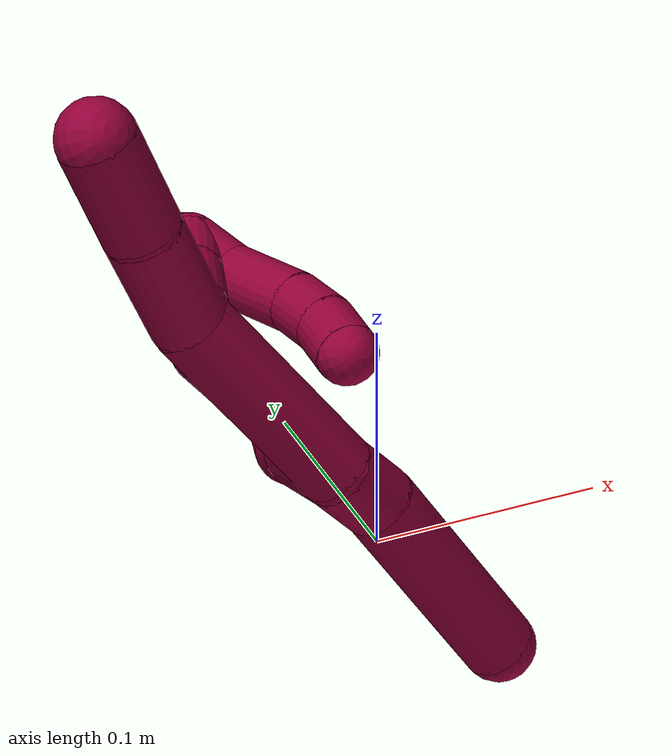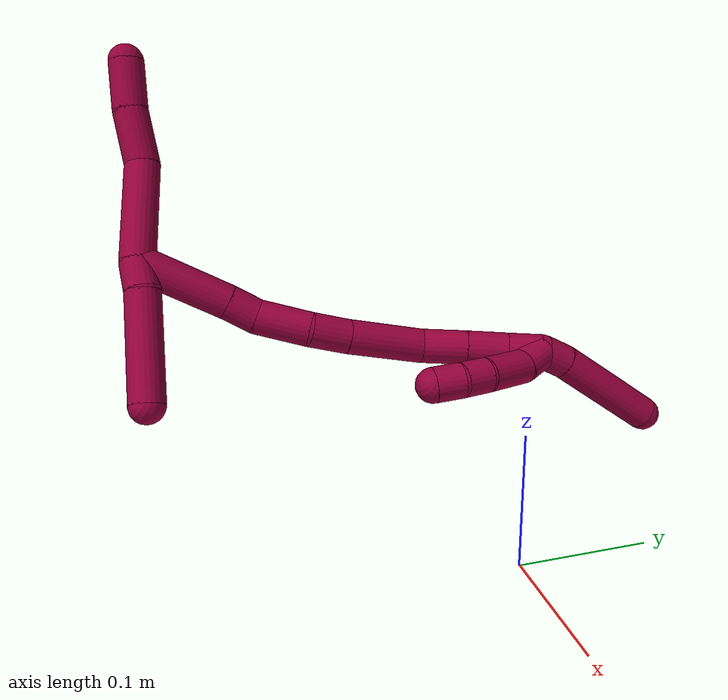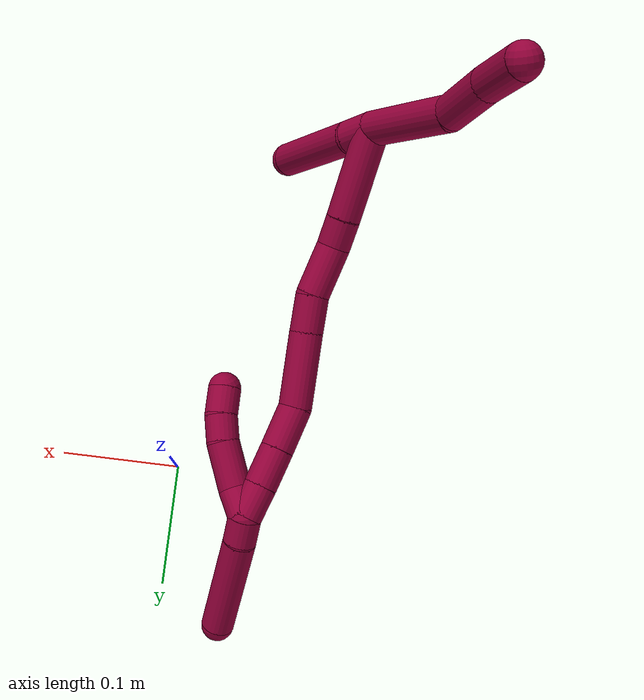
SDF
<sdf version="1.7">
 <world name="default">
  <model name="8">
   <static>0</static>
   <link name="8">
    <collision name="collision-cylinder-e_1_2_8">
     <pose>-0.030893 0.020094 0.006788 -1.24501 -0.969157 0.722496</pose>
     <geometry><cylinder><radius>0.0125</radius><length>0.074945</length></cylinder></geometry>
     <surface>
      <friction><ode><mu>1.16</mu><mu2>1.16</mu2><slip1>0</slip1><slip2>0</slip2></ode></friction>
      <contact><ode><kp>1e+06</kp><kd>1</kd><max_vel>0</max_vel><min_depth>0.001</min_depth></ode></contact>
     </surface>
    </collision>
    <visual name="visual-cylinder-e_1_2_8">
     <pose>-0.030893 0.020094 0.006788 -1.24501 -0.969157 0.722496</pose>
     <geometry><cylinder><radius>0.0125</radius><length>0.074945</length></cylinder></geometry>
     <material><ambient>0.584314 0 0.227451 1</ambient></material>
    </visual>
    <collision name="collision-cylinder-e_2_8_9">
     <pose>-0.075397 0.05085 0.02342 -0.825297 -0.753401 0.342965</pose>
     <geometry><cylinder><radius>0.0125</radius><length>0.039793</length></cylinder></geometry>
     <surface>
      <friction><ode><mu>1.16</mu><mu2>1.16</mu2><slip1>0</slip1><slip2>0</slip2></ode></friction>
      <contact><ode><kp>1e+06</kp><kd>1</kd><max_vel>0</max_vel><min_depth>0.001</min_depth></ode></contact>
     </surface>
    </collision>
    <visual name="visual-cylinder-e_2_8_9">
     <pose>-0.075397 0.05085 0.02342 -0.825297 -0.753401 0.342965</pose>
     <geometry><cylinder><radius>0.0125</radius><length>0.039793</length></cylinder></geometry>
     <material><ambient>0.584314 0 0.227451 1</ambient></material>
    </visual>
    <collision name="collision-cylinder-e_3_9_6">
     <pose>-0.100681 0.072612 0.040435 -0.997205 -0.723526 0.4064</pose>
     <geometry><cylinder><radius>0.0125</radius><length>0.035262</length></cylinder></geometry>
     <surface>
      <friction><ode><mu>1.16</mu><mu2>1.16</mu2><slip1>0</slip1><slip2>0</slip2></ode></friction>
      <contact><ode><kp>1e+06</kp><kd>1</kd><max_vel>0</max_vel><min_depth>0.001</min_depth></ode></contact>
     </surface>
    </collision>
    <visual name="visual-cylinder-e_3_9_6">
     <pose>-0.100681 0.072612 0.040435 -0.997205 -0.723526 0.4064</pose>
     <geometry><cylinder><radius>0.0125</radius><length>0.035262</length></cylinder></geometry>
     <material><ambient>0.584314 0 0.227451 1</ambient></material>
    </visual>
    <collision name="collision-cylinder-e_1_2_10">
     <pose>0.009881 -0.004085 -0.003305 2.25104 1.08207 1.79908</pose>
     <geometry><cylinder><radius>0.0125</radius><length>0.022382</length></cylinder></geometry>
     <surface>
      <friction><ode><mu>1.16</mu><mu2>1.16</mu2><slip1>0</slip1><slip2>0</slip2></ode></friction>
      <contact><ode><kp>1e+06</kp><kd>1</kd><max_vel>0</max_vel><min_depth>0.001</min_depth></ode></contact>
     </surface>
    </collision>
    <visual name="visual-cylinder-e_1_2_10">
     <pose>0.009881 -0.004085 -0.003305 2.25104 1.08207 1.79908</pose>
     <geometry><cylinder><radius>0.0125</radius><length>0.022382</length></cylinder></geometry>
     <material><ambient>0.584314 0 0.227451 1</ambient></material>
    </visual>
    <collision name="collision-cylinder-e_2_10_5">
     <pose>0.050596 -0.029103 -0.017436 2.04809 0.918195 1.36424</pose>
     <geometry><cylinder><radius>0.0125</radius><length>0.077618</length></cylinder></geometry>
     <surface>
      <friction><ode><mu>1.16</mu><mu2>1.16</mu2><slip1>0</slip1><slip2>0</slip2></ode></friction>
      <contact><ode><kp>1e+06</kp><kd>1</kd><max_vel>0</max_vel><min_depth>0.001</min_depth></ode></contact>
     </surface>
    </collision>
    <visual name="visual-cylinder-e_2_10_5">
     <pose>0.050596 -0.029103 -0.017436 2.04809 0.918195 1.36424</pose>
     <geometry><cylinder><radius>0.0125</radius><length>0.077618</length></cylinder></geometry>
     <material><ambient>0.584314 0 0.227451 1</ambient></material>
    </visual>
    <collision name="collision-cylinder-e_1_2_11">
     <pose>0.012061 0.007087 -0.030033 -2.90986 0.372609 -2.03527</pose>
     <geometry><cylinder><radius>0.0125</radius><length>0.066261</length></cylinder></geometry>
     <surface>
      <friction><ode><mu>1.16</mu><mu2>1.16</mu2><slip1>0</slip1><slip2>0</slip2></ode></friction>
      <contact><ode><kp>1e+06</kp><kd>1</kd><max_vel>0</max_vel><min_depth>0.001</min_depth></ode></contact>
     </surface>
    </collision>
    <visual name="visual-cylinder-e_1_2_11">
     <pose>0.012061 0.007087 -0.030033 -2.90986 0.372609 -2.03527</pose>
     <geometry><cylinder><radius>0.0125</radius><length>0.066261</length></cylinder></geometry>
     <material><ambient>0.584314 0 0.227451 1</ambient></material>
    </visual>
    <collision name="collision-cylinder-e_2_11_12">
     <pose>0.028471 0.016 -0.069984 -2.95945 0.407066 -2.30844</pose>
     <geometry><cylinder><radius>0.0125</radius><length>0.021967</length></cylinder></geometry>
     <surface>
      <friction><ode><mu>1.16</mu><mu2>1.16</mu2><slip1>0</slip1><slip2>0</slip2></ode></friction>
      <contact><ode><kp>1e+06</kp><kd>1</kd><max_vel>0</max_vel><min_depth>0.001</min_depth></ode></contact>
     </surface>
    </collision>
    <visual name="visual-cylinder-e_2_11_12">
     <pose>0.028471 0.016 -0.069984 -2.95945 0.407066 -2.30844</pose>
     <geometry><cylinder><radius>0.0125</radius><length>0.021967</length></cylinder></geometry>
     <material><ambient>0.584314 0 0.227451 1</ambient></material>
    </visual>
    <collision name="collision-cylinder-e_3_12_13">
     <pose>0.04043 0.026061 -0.095576 -2.65788 0.405976 -1.39068</pose>
     <geometry><cylinder><radius>0.0125</radius><length>0.038542</length></cylinder></geometry>
     <surface>
      <friction><ode><mu>1.16</mu><mu2>1.16</mu2><slip1>0</slip1><slip2>0</slip2></ode></friction>
      <contact><ode><kp>1e+06</kp><kd>1</kd><max_vel>0</max_vel><min_depth>0.001</min_depth></ode></contact>
     </surface>
    </collision>
    <visual name="visual-cylinder-e_3_12_13">
     <pose>0.04043 0.026061 -0.095576 -2.65788 0.405976 -1.39068</pose>
     <geometry><cylinder><radius>0.0125</radius><length>0.038542</length></cylinder></geometry>
     <material><ambient>0.584314 0 0.227451 1</ambient></material>
    </visual>
    <collision name="collision-cylinder-e_4_13_14">
     <pose>0.050535 0.039454 -0.124039 -2.75816 0.17895 -0.865919</pose>
     <geometry><cylinder><radius>0.0125</radius><length>0.028029</length></cylinder></geometry>
     <surface>
      <friction><ode><mu>1.16</mu><mu2>1.16</mu2><slip1>0</slip1><slip2>0</slip2></ode></friction>
      <contact><ode><kp>1e+06</kp><kd>1</kd><max_vel>0</max_vel><min_depth>0.001</min_depth></ode></contact>
     </surface>
    </collision>
    <visual name="visual-cylinder-e_4_13_14">
     <pose>0.050535 0.039454 -0.124039 -2.75816 0.17895 -0.865919</pose>
     <geometry><cylinder><radius>0.0125</radius><length>0.028029</length></cylinder></geometry>
     <material><ambient>0.584314 0 0.227451 1</ambient></material>
    </visual>
    <collision name="collision-cylinder-e_5_14_15">
     <pose>0.057114 0.056248 -0.16219 -2.71149 0.145369 -0.643522</pose>
     <geometry><cylinder><radius>0.0125</radius><length>0.0564</length></cylinder></geometry>
     <surface>
      <friction><ode><mu>1.16</mu><mu2>1.16</mu2><slip1>0</slip1><slip2>0</slip2></ode></friction>
      <contact><ode><kp>1e+06</kp><kd>1</kd><max_vel>0</max_vel><min_depth>0.001</min_depth></ode></contact>
     </surface>
    </collision>
    <visual name="visual-cylinder-e_5_14_15">
     <pose>0.057114 0.056248 -0.16219 -2.71149 0.145369 -0.643522</pose>
     <geometry><cylinder><radius>0.0125</radius><length>0.0564</length></cylinder></geometry>
     <material><ambient>0.584314 0 0.227451 1</ambient></material>
    </visual>
    <collision name="collision-cylinder-e_6_15_16">
     <pose>0.066776 0.078052 -0.199759 -2.44701 0.337566 -0.879995</pose>
     <geometry><cylinder><radius>0.0125</radius><length>0.033677</length></cylinder></geometry>
     <surface>
      <friction><ode><mu>1.16</mu><mu2>1.16</mu2><slip1>0</slip1><slip2>0</slip2></ode></friction>
      <contact><ode><kp>1e+06</kp><kd>1</kd><max_vel>0</max_vel><min_depth>0.001</min_depth></ode></contact>
     </surface>
    </collision>
    <visual name="visual-cylinder-e_6_15_16">
     <pose>0.066776 0.078052 -0.199759 -2.44701 0.337566 -0.879995</pose>
     <geometry><cylinder><radius>0.0125</radius><length>0.033677</length></cylinder></geometry>
     <material><ambient>0.584314 0 0.227451 1</ambient></material>
    </visual>
    <collision name="collision-cylinder-e_7_16_17">
     <pose>0.077541 0.097131 -0.222749 -2.45103 0.355215 -0.92575</pose>
     <geometry><cylinder><radius>0.0125</radius><length>0.029837</length></cylinder></geometry>
     <surface>
      <friction><ode><mu>1.16</mu><mu2>1.16</mu2><slip1>0</slip1><slip2>0</slip2></ode></friction>
      <contact><ode><kp>1e+06</kp><kd>1</kd><max_vel>0</max_vel><min_depth>0.001</min_depth></ode></contact>
     </surface>
    </collision>
    <visual name="visual-cylinder-e_7_16_17">
     <pose>0.077541 0.097131 -0.222749 -2.45103 0.355215 -0.92575</pose>
     <geometry><cylinder><radius>0.0125</radius><length>0.029837</length></cylinder></geometry>
     <material><ambient>0.584314 0 0.227451 1</ambient></material>
    </visual>
    <collision name="collision-cylinder-e_8_17_1">
     <pose>0.087411 0.113792 -0.242354 -2.42074 0.379294 -0.942136</pose>
     <geometry><cylinder><radius>0.0125</radius><length>0.025286</length></cylinder></geometry>
     <surface>
      <friction><ode><mu>1.16</mu><mu2>1.16</mu2><slip1>0</slip1><slip2>0</slip2></ode></friction>
      <contact><ode><kp>1e+06</kp><kd>1</kd><max_vel>0</max_vel><min_depth>0.001</min_depth></ode></contact>
     </surface>
    </collision>
    <visual name="visual-cylinder-e_8_17_1">
     <pose>0.087411 0.113792 -0.242354 -2.42074 0.379294 -0.942136</pose>
     <geometry><cylinder><radius>0.0125</radius><length>0.025286</length></cylinder></geometry>
     <material><ambient>0.584314 0 0.227451 1</ambient></material>
    </visual>
    <collision name="collision-cylinder-e_1_1_18">
     <pose>0.097164 0.114713 -0.243737 0.742753 0.465403 0.184073</pose>
     <geometry><cylinder><radius>0.0125</radius><length>0.022604</length></cylinder></geometry>
     <surface>
      <friction><ode><mu>1.16</mu><mu2>1.16</mu2><slip1>0</slip1><slip2>0</slip2></ode></friction>
      <contact><ode><kp>1e+06</kp><kd>1</kd><max_vel>0</max_vel><min_depth>0.001</min_depth></ode></contact>
     </surface>
    </collision>
    <visual name="visual-cylinder-e_1_1_18">
     <pose>0.097164 0.114713 -0.243737 0.742753 0.465403 0.184073</pose>
     <geometry><cylinder><radius>0.0125</radius><length>0.022604</length></cylinder></geometry>
     <material><ambient>0.584314 0 0.227451 1</ambient></material>
    </visual>
    <collision name="collision-cylinder-e_2_18_19">
     <pose>0.107339 0.100452 -0.220466 0.43879 0.283852 0.063702</pose>
     <geometry><cylinder><radius>0.0125</radius><length>0.036436</length></cylinder></geometry>
     <surface>
      <friction><ode><mu>1.16</mu><mu2>1.16</mu2><slip1>0</slip1><slip2>0</slip2></ode></friction>
      <contact><ode><kp>1e+06</kp><kd>1</kd><max_vel>0</max_vel><min_depth>0.001</min_depth></ode></contact>
     </surface>
    </collision>
    <visual name="visual-cylinder-e_2_18_19">
     <pose>0.107339 0.100452 -0.220466 0.43879 0.283852 0.063702</pose>
     <geometry><cylinder><radius>0.0125</radius><length>0.036436</length></cylinder></geometry>
     <material><ambient>0.584314 0 0.227451 1</ambient></material>
    </visual>
    <collision name="collision-cylinder-e_3_19_20">
     <pose>0.113809 0.087675 -0.196193 0.564713 0.136069 0.03953</pose>
     <geometry><cylinder><radius>0.0125</radius><length>0.020171</length></cylinder></geometry>
     <surface>
      <friction><ode><mu>1.16</mu><mu2>1.16</mu2><slip1>0</slip1><slip2>0</slip2></ode></friction>
      <contact><ode><kp>1e+06</kp><kd>1</kd><max_vel>0</max_vel><min_depth>0.001</min_depth></ode></contact>
     </surface>
    </collision>
    <visual name="visual-cylinder-e_3_19_20">
     <pose>0.113809 0.087675 -0.196193 0.564713 0.136069 0.03953</pose>
     <geometry><cylinder><radius>0.0125</radius><length>0.020171</length></cylinder></geometry>
     <material><ambient>0.584314 0 0.227451 1</ambient></material>
    </visual>
    <collision name="collision-cylinder-e_4_20_4">
     <pose>0.114854 0.075736 -0.179721 0.687222 -0.031076 -0.01112</pose>
     <geometry><cylinder><radius>0.0125</radius><length>0.02079</length></cylinder></geometry>
     <surface>
      <friction><ode><mu>1.16</mu><mu2>1.16</mu2><slip1>0</slip1><slip2>0</slip2></ode></friction>
      <contact><ode><kp>1e+06</kp><kd>1</kd><max_vel>0</max_vel><min_depth>0.001</min_depth></ode></contact>
     </surface>
    </collision>
    <visual name="visual-cylinder-e_4_20_4">
     <pose>0.114854 0.075736 -0.179721 0.687222 -0.031076 -0.01112</pose>
     <geometry><cylinder><radius>0.0125</radius><length>0.02079</length></cylinder></geometry>
     <material><ambient>0.584314 0 0.227451 1</ambient></material>
    </visual>
    <collision name="collision-cylinder-e_1_1_21">
     <pose>0.095019 0.123459 -0.260829 -2.94571 0.289087 -1.95408</pose>
     <geometry><cylinder><radius>0.0125</radius><length>0.020532</length></cylinder></geometry>
     <surface>
      <friction><ode><mu>1.16</mu><mu2>1.16</mu2><slip1>0</slip1><slip2>0</slip2></ode></friction>
      <contact><ode><kp>1e+06</kp><kd>1</kd><max_vel>0</max_vel><min_depth>0.001</min_depth></ode></contact>
     </surface>
    </collision>
    <visual name="visual-cylinder-e_1_1_21">
     <pose>0.095019 0.123459 -0.260829 -2.94571 0.289087 -1.95408</pose>
     <geometry><cylinder><radius>0.0125</radius><length>0.020532</length></cylinder></geometry>
     <material><ambient>0.584314 0 0.227451 1</ambient></material>
    </visual>
    <collision name="collision-cylinder-e_2_21_3">
     <pose>0.11182 0.127884 -0.307629 -3.07413 0.3567 -2.77147</pose>
     <geometry><cylinder><radius>0.0125</radius><length>0.079468</length></cylinder></geometry>
     <surface>
      <friction><ode><mu>1.16</mu><mu2>1.16</mu2><slip1>0</slip1><slip2>0</slip2></ode></friction>
      <contact><ode><kp>1e+06</kp><kd>1</kd><max_vel>0</max_vel><min_depth>0.001</min_depth></ode></contact>
     </surface>
    </collision>
    <visual name="visual-cylinder-e_2_21_3">
     <pose>0.11182 0.127884 -0.307629 -3.07413 0.3567 -2.77147</pose>
     <geometry><cylinder><radius>0.0125</radius><length>0.079468</length></cylinder></geometry>
     <material><ambient>0.584314 0 0.227451 1</ambient></material>
    </visual>
    <collision name="collision-sphere-3">
     <pose>0.125694 0.130394 -0.344777 0 -0 0</pose>
     <geometry><sphere><radius>0.0125</radius></sphere></geometry>
     <surface>
      <friction><ode><mu>1.16</mu><mu2>1.16</mu2><slip1>0</slip1><slip2>0</slip2></ode></friction>
      <contact><ode><kp>1e+06</kp><kd>1</kd><max_vel>0</max_vel><min_depth>0.001</min_depth></ode></contact>
     </surface>
    </collision>
    <visual name="visual-sphere-3">
     <pose>0.125694 0.130394 -0.344777 0 -0 0</pose>
     <geometry><sphere><radius>0.0125</radius></sphere></geometry>
     <material><ambient>0.584314 0 0.227451 1</ambient></material>
    </visual>
    <collision name="collision-sphere-21">
     <pose>0.097946 0.125374 -0.270481 0 -0 0</pose>
     <geometry><sphere><radius>0.0125</radius></sphere></geometry>
     <surface>
      <friction><ode><mu>1.16</mu><mu2>1.16</mu2><slip1>0</slip1><slip2>0</slip2></ode></friction>
      <contact><ode><kp>1e+06</kp><kd>1</kd><max_vel>0</max_vel><min_depth>0.001</min_depth></ode></contact>
     </surface>
    </collision>
    <visual name="visual-sphere-21">
     <pose>0.097946 0.125374 -0.270481 0 -0 0</pose>
     <geometry><sphere><radius>0.0125</radius></sphere></geometry>
     <material><ambient>0.584314 0 0.227451 1</ambient></material>
    </visual>
    <collision name="collision-sphere-4">
     <pose>0.114531 0.069145 -0.171689 0 -0 0</pose>
     <geometry><sphere><radius>0.0125</radius></sphere></geometry>
     <surface>
      <friction><ode><mu>1.16</mu><mu2>1.16</mu2><slip1>0</slip1><slip2>0</slip2></ode></friction>
      <contact><ode><kp>1e+06</kp><kd>1</kd><max_vel>0</max_vel><min_depth>0.001</min_depth></ode></contact>
     </surface>
    </collision>
    <visual name="visual-sphere-4">
     <pose>0.114531 0.069145 -0.171689 0 -0 0</pose>
     <geometry><sphere><radius>0.0125</radius></sphere></geometry>
     <material><ambient>0.584314 0 0.227451 1</ambient></material>
    </visual>
    <collision name="collision-sphere-20">
     <pose>0.115177 0.082327 -0.187752 0 -0 0</pose>
     <geometry><sphere><radius>0.0125</radius></sphere></geometry>
     <surface>
      <friction><ode><mu>1.16</mu><mu2>1.16</mu2><slip1>0</slip1><slip2>0</slip2></ode></friction>
      <contact><ode><kp>1e+06</kp><kd>1</kd><max_vel>0</max_vel><min_depth>0.001</min_depth></ode></contact>
     </surface>
    </collision>
    <visual name="visual-sphere-20">
     <pose>0.115177 0.082327 -0.187752 0 -0 0</pose>
     <geometry><sphere><radius>0.0125</radius></sphere></geometry>
     <material><ambient>0.584314 0 0.227451 1</ambient></material>
    </visual>
    <collision name="collision-sphere-5">
     <pose>0.08143 -0.050036 -0.028262 0 -0 0</pose>
     <geometry><sphere><radius>0.0125</radius></sphere></geometry>
     <surface>
      <friction><ode><mu>1.16</mu><mu2>1.16</mu2><slip1>0</slip1><slip2>0</slip2></ode></friction>
      <contact><ode><kp>1e+06</kp><kd>1</kd><max_vel>0</max_vel><min_depth>0.001</min_depth></ode></contact>
     </surface>
    </collision>
    <visual name="visual-sphere-5">
     <pose>0.08143 -0.050036 -0.028262 0 -0 0</pose>
     <geometry><sphere><radius>0.0125</radius></sphere></geometry>
     <material><ambient>0.584314 0 0.227451 1</ambient></material>
    </visual>
    <collision name="collision-sphere-10">
     <pose>0.019762 -0.008169 -0.00661 0 -0 0</pose>
     <geometry><sphere><radius>0.0125</radius></sphere></geometry>
     <surface>
      <friction><ode><mu>1.16</mu><mu2>1.16</mu2><slip1>0</slip1><slip2>0</slip2></ode></friction>
      <contact><ode><kp>1e+06</kp><kd>1</kd><max_vel>0</max_vel><min_depth>0.001</min_depth></ode></contact>
     </surface>
    </collision>
    <visual name="visual-sphere-10">
     <pose>0.019762 -0.008169 -0.00661 0 -0 0</pose>
     <geometry><sphere><radius>0.0125</radius></sphere></geometry>
     <material><ambient>0.584314 0 0.227451 1</ambient></material>
    </visual>
    <collision name="collision-sphere-6">
     <pose>-0.112353 0.083711 0.047605 0 -0 0</pose>
     <geometry><sphere><radius>0.0125</radius></sphere></geometry>
     <surface>
      <friction><ode><mu>1.16</mu><mu2>1.16</mu2><slip1>0</slip1><slip2>0</slip2></ode></friction>
      <contact><ode><kp>1e+06</kp><kd>1</kd><max_vel>0</max_vel><min_depth>0.001</min_depth></ode></contact>
     </surface>
    </collision>
    <visual name="visual-sphere-6">
     <pose>-0.112353 0.083711 0.047605 0 -0 0</pose>
     <geometry><sphere><radius>0.0125</radius></sphere></geometry>
     <material><ambient>0.584314 0 0.227451 1</ambient></material>
    </visual>
    <collision name="collision-sphere-9">
     <pose>-0.089009 0.061513 0.033264 0 -0 0</pose>
     <geometry><sphere><radius>0.0125</radius></sphere></geometry>
     <surface>
      <friction><ode><mu>1.16</mu><mu2>1.16</mu2><slip1>0</slip1><slip2>0</slip2></ode></friction>
      <contact><ode><kp>1e+06</kp><kd>1</kd><max_vel>0</max_vel><min_depth>0.001</min_depth></ode></contact>
     </surface>
    </collision>
    <visual name="visual-sphere-9">
     <pose>-0.089009 0.061513 0.033264 0 -0 0</pose>
     <geometry><sphere><radius>0.0125</radius></sphere></geometry>
     <material><ambient>0.584314 0 0.227451 1</ambient></material>
    </visual>
    <collision name="collision-sphere-2">
     <geometry><sphere><radius>0.0125</radius></sphere></geometry>
     <surface>
      <friction><ode><mu>1.16</mu><mu2>1.16</mu2><slip1>0</slip1><slip2>0</slip2></ode></friction>
      <contact><ode><kp>1e+06</kp><kd>1</kd><max_vel>0</max_vel><min_depth>0.001</min_depth></ode></contact>
     </surface>
    </collision>
    <visual name="visual-sphere-2">
     <geometry><sphere><radius>0.0125</radius></sphere></geometry>
     <material><ambient>0.584314 0 0.227451 1</ambient></material>
    </visual>
    <collision name="collision-sphere-19">
     <pose>0.112441 0.093022 -0.204634 0 -0 0</pose>
     <geometry><sphere><radius>0.0125</radius></sphere></geometry>
     <surface>
      <friction><ode><mu>1.16</mu><mu2>1.16</mu2><slip1>0</slip1><slip2>0</slip2></ode></friction>
      <contact><ode><kp>1e+06</kp><kd>1</kd><max_vel>0</max_vel><min_depth>0.001</min_depth></ode></contact>
     </surface>
    </collision>
    <visual name="visual-sphere-19">
     <pose>0.112441 0.093022 -0.204634 0 -0 0</pose>
     <geometry><sphere><radius>0.0125</radius></sphere></geometry>
     <material><ambient>0.584314 0 0.227451 1</ambient></material>
    </visual>
    <collision name="collision-sphere-8">
     <pose>-0.061785 0.040187 0.013576 0 -0 0</pose>
     <geometry><sphere><radius>0.0125</radius></sphere></geometry>
     <surface>
      <friction><ode><mu>1.16</mu><mu2>1.16</mu2><slip1>0</slip1><slip2>0</slip2></ode></friction>
      <contact><ode><kp>1e+06</kp><kd>1</kd><max_vel>0</max_vel><min_depth>0.001</min_depth></ode></contact>
     </surface>
    </collision>
    <visual name="visual-sphere-8">
     <pose>-0.061785 0.040187 0.013576 0 -0 0</pose>
     <geometry><sphere><radius>0.0125</radius></sphere></geometry>
     <material><ambient>0.584314 0 0.227451 1</ambient></material>
    </visual>
    <collision name="collision-sphere-11">
     <pose>0.024122 0.014173 -0.060065 0 -0 0</pose>
     <geometry><sphere><radius>0.0125</radius></sphere></geometry>
     <surface>
      <friction><ode><mu>1.16</mu><mu2>1.16</mu2><slip1>0</slip1><slip2>0</slip2></ode></friction>
      <contact><ode><kp>1e+06</kp><kd>1</kd><max_vel>0</max_vel><min_depth>0.001</min_depth></ode></contact>
     </surface>
    </collision>
    <visual name="visual-sphere-11">
     <pose>0.024122 0.014173 -0.060065 0 -0 0</pose>
     <geometry><sphere><radius>0.0125</radius></sphere></geometry>
     <material><ambient>0.584314 0 0.227451 1</ambient></material>
    </visual>
    <collision name="collision-sphere-12">
     <pose>0.032819 0.017827 -0.079903 0 -0 0</pose>
     <geometry><sphere><radius>0.0125</radius></sphere></geometry>
     <surface>
      <friction><ode><mu>1.16</mu><mu2>1.16</mu2><slip1>0</slip1><slip2>0</slip2></ode></friction>
      <contact><ode><kp>1e+06</kp><kd>1</kd><max_vel>0</max_vel><min_depth>0.001</min_depth></ode></contact>
     </surface>
    </collision>
    <visual name="visual-sphere-12">
     <pose>0.032819 0.017827 -0.079903 0 -0 0</pose>
     <geometry><sphere><radius>0.0125</radius></sphere></geometry>
     <material><ambient>0.584314 0 0.227451 1</ambient></material>
    </visual>
    <collision name="collision-sphere-13">
     <pose>0.04804 0.034295 -0.11125 0 -0 0</pose>
     <geometry><sphere><radius>0.0125</radius></sphere></geometry>
     <surface>
      <friction><ode><mu>1.16</mu><mu2>1.16</mu2><slip1>0</slip1><slip2>0</slip2></ode></friction>
      <contact><ode><kp>1e+06</kp><kd>1</kd><max_vel>0</max_vel><min_depth>0.001</min_depth></ode></contact>
     </surface>
    </collision>
    <visual name="visual-sphere-13">
     <pose>0.04804 0.034295 -0.11125 0 -0 0</pose>
     <geometry><sphere><radius>0.0125</radius></sphere></geometry>
     <material><ambient>0.584314 0 0.227451 1</ambient></material>
    </visual>
    <collision name="collision-sphere-14">
     <pose>0.053029 0.044613 -0.136829 0 -0 0</pose>
     <geometry><sphere><radius>0.0125</radius></sphere></geometry>
     <surface>
      <friction><ode><mu>1.16</mu><mu2>1.16</mu2><slip1>0</slip1><slip2>0</slip2></ode></friction>
      <contact><ode><kp>1e+06</kp><kd>1</kd><max_vel>0</max_vel><min_depth>0.001</min_depth></ode></contact>
     </surface>
    </collision>
    <visual name="visual-sphere-14">
     <pose>0.053029 0.044613 -0.136829 0 -0 0</pose>
     <geometry><sphere><radius>0.0125</radius></sphere></geometry>
     <material><ambient>0.584314 0 0.227451 1</ambient></material>
    </visual>
    <collision name="collision-sphere-15">
     <pose>0.061199 0.067882 -0.187551 0 -0 0</pose>
     <geometry><sphere><radius>0.0125</radius></sphere></geometry>
     <surface>
      <friction><ode><mu>1.16</mu><mu2>1.16</mu2><slip1>0</slip1><slip2>0</slip2></ode></friction>
      <contact><ode><kp>1e+06</kp><kd>1</kd><max_vel>0</max_vel><min_depth>0.001</min_depth></ode></contact>
     </surface>
    </collision>
    <visual name="visual-sphere-15">
     <pose>0.061199 0.067882 -0.187551 0 -0 0</pose>
     <geometry><sphere><radius>0.0125</radius></sphere></geometry>
     <material><ambient>0.584314 0 0.227451 1</ambient></material>
    </visual>
    <collision name="collision-sphere-16">
     <pose>0.072353 0.088221 -0.211966 0 -0 0</pose>
     <geometry><sphere><radius>0.0125</radius></sphere></geometry>
     <surface>
      <friction><ode><mu>1.16</mu><mu2>1.16</mu2><slip1>0</slip1><slip2>0</slip2></ode></friction>
      <contact><ode><kp>1e+06</kp><kd>1</kd><max_vel>0</max_vel><min_depth>0.001</min_depth></ode></contact>
     </surface>
    </collision>
    <visual name="visual-sphere-16">
     <pose>0.072353 0.088221 -0.211966 0 -0 0</pose>
     <geometry><sphere><radius>0.0125</radius></sphere></geometry>
     <material><ambient>0.584314 0 0.227451 1</ambient></material>
    </visual>
    <collision name="collision-sphere-17">
     <pose>0.08273 0.10604 -0.233531 0 -0 0</pose>
     <geometry><sphere><radius>0.0125</radius></sphere></geometry>
     <surface>
      <friction><ode><mu>1.16</mu><mu2>1.16</mu2><slip1>0</slip1><slip2>0</slip2></ode></friction>
      <contact><ode><kp>1e+06</kp><kd>1</kd><max_vel>0</max_vel><min_depth>0.001</min_depth></ode></contact>
     </surface>
    </collision>
    <visual name="visual-sphere-17">
     <pose>0.08273 0.10604 -0.233531 0 -0 0</pose>
     <geometry><sphere><radius>0.0125</radius></sphere></geometry>
     <material><ambient>0.584314 0 0.227451 1</ambient></material>
    </visual>
    <collision name="collision-sphere-1">
     <pose>0.092092 0.121544 -0.251177 0 -0 0</pose>
     <geometry><sphere><radius>0.0125</radius></sphere></geometry>
     <surface>
      <friction><ode><mu>1.16</mu><mu2>1.16</mu2><slip1>0</slip1><slip2>0</slip2></ode></friction>
      <contact><ode><kp>1e+06</kp><kd>1</kd><max_vel>0</max_vel><min_depth>0.001</min_depth></ode></contact>
     </surface>
    </collision>
    <visual name="visual-sphere-1">
     <pose>0.092092 0.121544 -0.251177 0 -0 0</pose>
     <geometry><sphere><radius>0.0125</radius></sphere></geometry>
     <material><ambient>0.584314 0 0.227451 1</ambient></material>
    </visual>
    <collision name="collision-sphere-18">
     <pose>0.102237 0.107882 -0.236298 0 -0 0</pose>
     <geometry><sphere><radius>0.0125</radius></sphere></geometry>
     <surface>
      <friction><ode><mu>1.16</mu><mu2>1.16</mu2><slip1>0</slip1><slip2>0</slip2></ode></friction>
      <contact><ode><kp>1e+06</kp><kd>1</kd><max_vel>0</max_vel><min_depth>0.001</min_depth></ode></contact>
     </surface>
    </collision>
    <visual name="visual-sphere-18">
     <pose>0.102237 0.107882 -0.236298 0 -0 0</pose>
     <geometry><sphere><radius>0.0125</radius></sphere></geometry>
     <material><ambient>0.584314 0 0.227451 1</ambient></material>
    </visual>
    <inertial>
     <pose>0.041738 0.054054 -0.118581 0 -0 0</pose>
     <mass>0.75</mass>
     <inertia><ixx>-3e-06</ixx><ixy>0</ixy><ixz>0</ixz><iyy>0.000102</iyy><iyz>0</iyz><izz>-7.8e-05</izz></inertia>
    </inertial>
   </link>
   <pose>-0.11897 -0.238733 0.208271 0.959401 0.355603 0.054771</pose>
  </model>
 </world>
</sdf>
